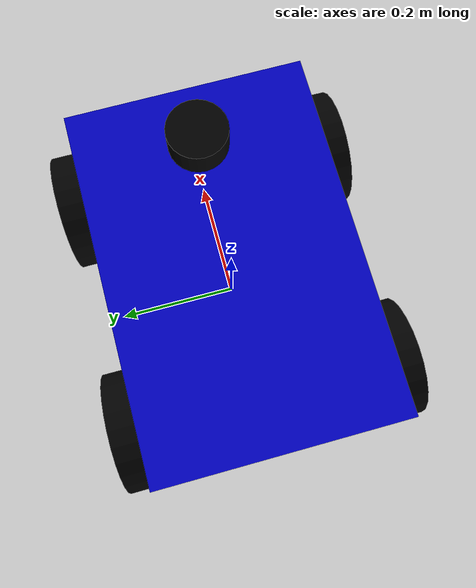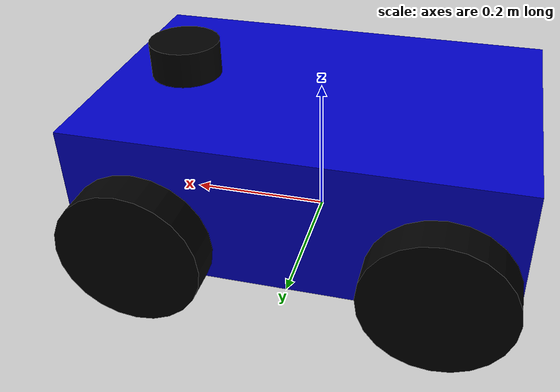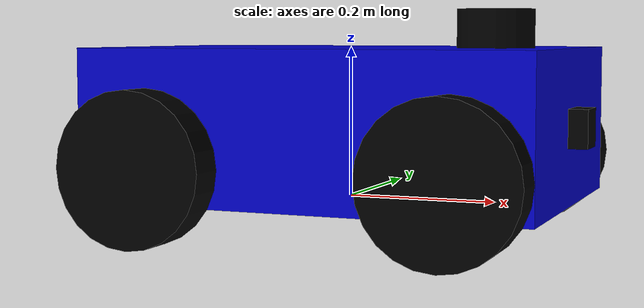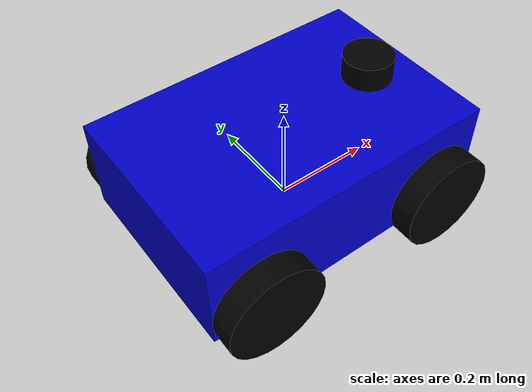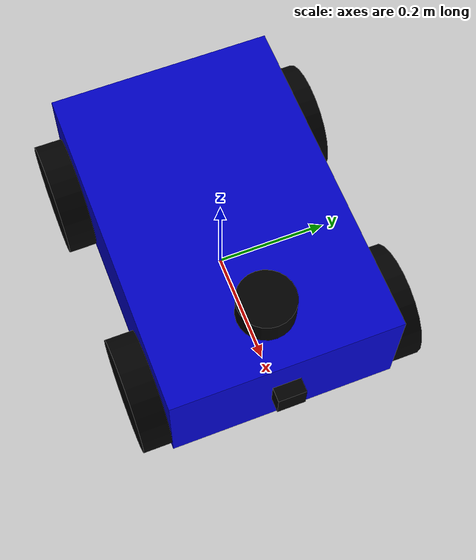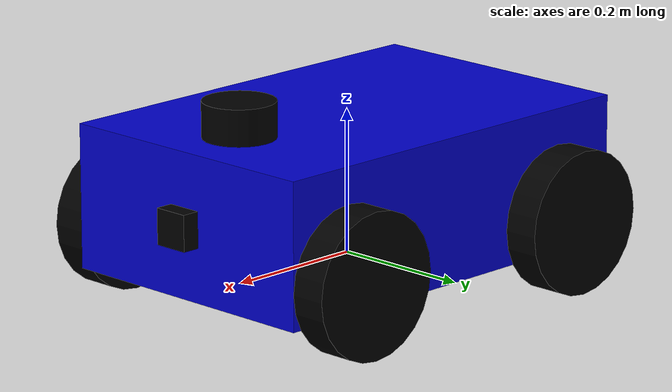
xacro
<?xml version="1.0"?>
<robot name="ugv_robot" xmlns:xacro="http://www.ros.org/wiki/xacro">

  <!-- Constants -->
  <xacro:property name="base_width" value="0.4"/>
  <xacro:property name="base_length" value="0.6"/>
  <xacro:property name="base_height" value="0.2"/>
  <xacro:property name="wheel_radius" value="0.1"/>
  <xacro:property name="wheel_width" value="0.05"/>
  <xacro:property name="wheel_ygap" value="0.025"/>
  <xacro:property name="wheel_zoff" value="0.05"/>
  <xacro:property name="wheel_xoff" value="0.2"/>

  <!-- Material definitions -->
  <material name="blue">
    <color rgba="0 0 0.8 1"/>
  </material>
  <material name="black">
    <color rgba="0 0 0 1"/>
  </material>
  <material name="white">
    <color rgba="1 1 1 1"/>
  </material>

  <!-- Base Link -->
  <link name="base_footprint"/>

  <joint name="base_joint" type="fixed">
    <parent link="base_footprint"/>
    <child link="base_link"/>
    <origin xyz="0 0 ${wheel_radius}" rpy="0 0 0"/>
  </joint>

  <link name="base_link">
    <visual>
      <geometry>
        <box size="${base_length} ${base_width} ${base_height}"/>
      </geometry>
      <material name="blue"/>
    </visual>
    <collision>
      <geometry>
        <box size="${base_length} ${base_width} ${base_height}"/>
      </geometry>
    </collision>
    <inertial>
      <mass value="10.0"/>
      <inertia ixx="0.1" ixy="0" ixz="0" iyy="0.1" iyz="0" izz="0.1"/>
    </inertial>
  </link>

  <!-- Wheels -->
  <xacro:macro name="wheel" params="prefix x_reflect y_reflect">
    <link name="${prefix}_wheel">
      <visual>
        <origin xyz="0 0 0" rpy="${pi/2} 0 0"/>
        <geometry>
          <cylinder radius="${wheel_radius}" length="${wheel_width}"/>
        </geometry>
        <material name="black"/>
      </visual>
      <collision>
        <origin xyz="0 0 0" rpy="${pi/2} 0 0"/>
        <geometry>
          <cylinder radius="${wheel_radius}" length="${wheel_width}"/>
        </geometry>
      </collision>
      <inertial>
        <mass value="1.0"/>
        <inertia ixx="0.01" ixy="0" ixz="0" iyy="0.01" iyz="0" izz="0.01"/>
      </inertial>
    </link>

    <joint name="${prefix}_wheel_joint" type="continuous">
      <parent link="base_link"/>
      <child link="${prefix}_wheel"/>
      <origin xyz="${x_reflect*wheel_xoff} ${y_reflect*(base_width/2+wheel_ygap)} ${-wheel_zoff}" rpy="0 0 0"/>
      <axis xyz="0 1 0"/>
    </joint>
  </xacro:macro>

  <xacro:wheel prefix="front_left" x_reflect="1" y_reflect="1" />
  <xacro:wheel prefix="front_right" x_reflect="1" y_reflect="-1" />
  <xacro:wheel prefix="back_left" x_reflect="-1" y_reflect="1" />
  <xacro:wheel prefix="back_right" x_reflect="-1" y_reflect="-1" />

  <!-- Sensors: LiDAR -->
  <link name="laser_link">
    <visual>
      <geometry>
        <cylinder radius="0.05" length="0.05"/>
      </geometry>
      <material name="black"/>
    </visual>
    <collision>
      <geometry>
        <cylinder radius="0.05" length="0.05"/>
      </geometry>
    </collision>
  </link>

  <joint name="laser_joint" type="fixed">
    <parent link="base_link"/>
    <child link="laser_link"/>
    <origin xyz="0.2 0 ${base_height/2 + 0.025}" rpy="0 0 0"/>
  </joint>

  <!-- Sensors: Camera -->
  <link name="camera_link">
    <visual>
      <geometry>
        <box size="0.05 0.05 0.05"/>
      </geometry>
      <material name="black"/>
    </visual>
  </link>

  <joint name="camera_joint" type="fixed">
    <parent link="base_link"/>
    <child link="camera_link"/>
    <origin xyz="0.3 0 0" rpy="0 0 0"/>
  </joint>

  <!-- Gazebo Plugins -->
  <gazebo>
    <plugin name="diff_drive" filename="libgazebo_ros_diff_drive.so">
      <ros>
        <namespace>/</namespace>
      </ros>
      <left_joint>front_left_wheel_joint</left_joint>
      <right_joint>front_right_wheel_joint</right_joint>
      <wheel_separation>${base_width + 2*wheel_ygap}</wheel_separation>
      <wheel_diameter>${2*wheel_radius}</wheel_diameter>
      <max_wheel_torque>20</max_wheel_torque>
      <max_wheel_acceleration>1.0</max_wheel_acceleration>
      <publish_odom>true</publish_odom>
      <publish_odom_tf>true</publish_odom_tf>
      <publish_wheel_tf>true</publish_wheel_tf>
      <odometry_frame>odom</odometry_frame>
      <robot_base_frame>base_footprint</robot_base_frame>
    </plugin>
  </gazebo>

  <gazebo reference="laser_link">
    <sensor name="lidar" type="ray">
      <always_on>true</always_on>
      <visualize>true</visualize>
      <update_rate>10</update_rate>
      <ray>
        <scan>
          <horizontal>
            <samples>360</samples>
            <resolution>1</resolution>
            <min_angle>-3.14159</min_angle>
            <max_angle>3.14159</max_angle>
          </horizontal>
        </scan>
        <range>
          <min>0.1</min>
          <max>30.0</max>
          <resolution>0.01</resolution>
        </range>
      </ray>
      <plugin name="scan" filename="libgazebo_ros_ray_sensor.so">
        <ros>
          <remapping>~/out:=scan</remapping>
        </ros>
        <output_type>sensor_msgs/LaserScan</output_type>
        <frame_name>laser_link</frame_name>
      </plugin>
    </sensor>
  </gazebo>

  <gazebo reference="camera_link">
    <sensor name="camera" type="camera">
      <always_on>true</always_on>
      <update_rate>30</update_rate>
      <camera name="head">
        <horizontal_fov>1.3962634</horizontal_fov>
        <image>
          <width>800</width>
          <height>600</height>
          <format>R8G8B8</format>
        </image>
        <clip>
          <near>0.02</near>
          <far>300</far>
        </clip>
      </camera>
      <plugin name="camera_controller" filename="libgazebo_ros_camera.so">
        <alwaysOn>true</alwaysOn>
        <updateRate>0.0</updateRate>
        <cameraName>camera</cameraName>
        <imageTopicName>image_raw</imageTopicName>
        <cameraInfoTopicName>camera_info</cameraInfoTopicName>
        <frameName>camera_link</frameName>
      </plugin>
    </sensor>
  </gazebo>

</robot>
